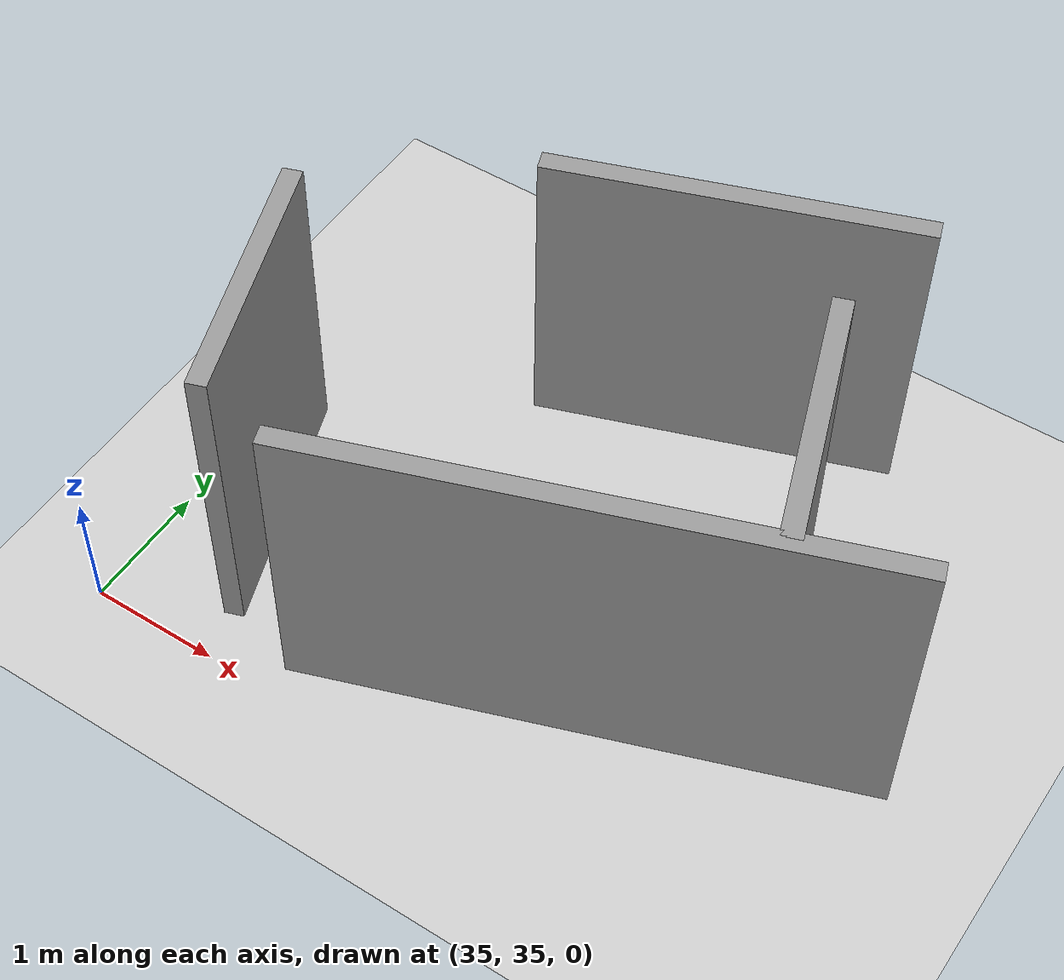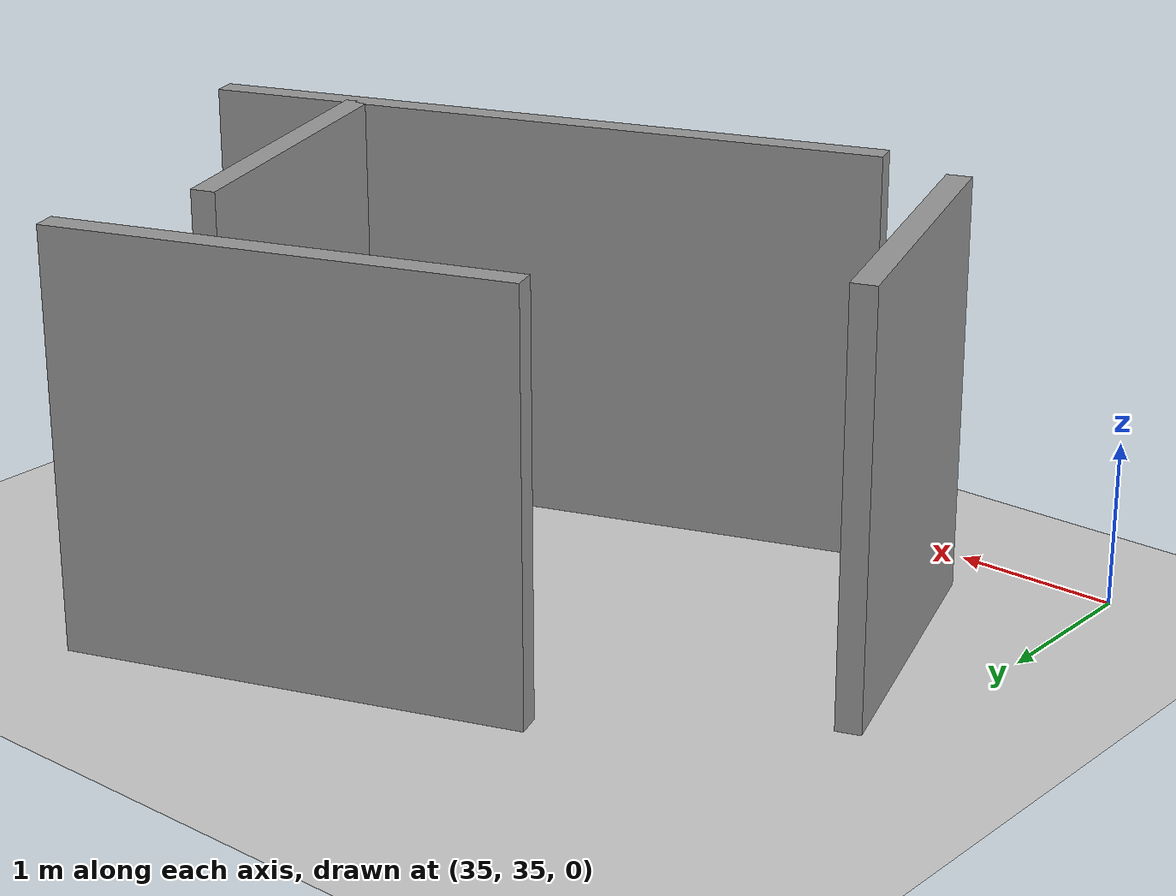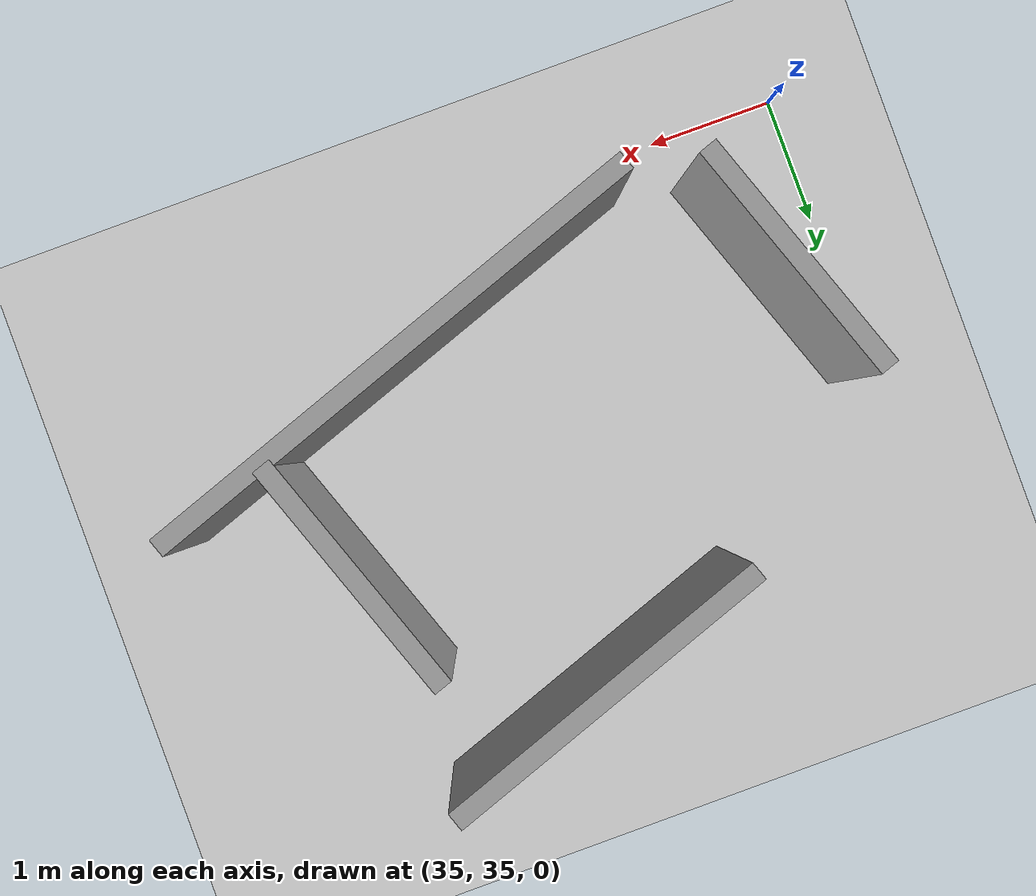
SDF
<sdf version="1.6">
 <world name="default">
  <model name="ground_plane">
   <static>1</static>
   <link name="link">
    <collision name="collision">
     <geometry><plane><normal>0 0 1</normal><size>100 100</size></plane></geometry>
     <surface><friction><ode><mu>100</mu><mu2>50</mu2></ode></friction></surface>
    </collision>
    <visual name="visual">
     <cast_shadows>0</cast_shadows>
     <geometry><plane><normal>0 0 1</normal><size>100 100</size></plane></geometry>
     <material>
      <script><uri>file://media/materials/scripts/gazebo.material</uri><name>Gazebo/Grey</name></script>
     </material>
    </visual>
   </link>
  </model>
  <model name="obs2_7">
   <pose>37.9292 37.1136 0 0 0 -2.01635</pose>
   <link name="Wall_0">
    <collision name="Wall_0_Collision">
     <geometry><box><size>2 0.15 2.5</size></box></geometry>
     <pose>0 0 1.25 0 -0 0</pose>
    </collision>
    <visual name="Wall_0_Visual">
     <pose>0 0 1.25 0 -0 0</pose>
     <geometry><box><size>2 0.15 2.5</size></box></geometry>
     <material>
      <script><uri>file://media/materials/scripts/gazebo.material</uri><name>Gazebo/Grey</name></script>
      <ambient>1 1 1 1</ambient>
     </material>
    </visual>
    <pose>-0.796332 1.10862 0 0 -0 0.785398</pose>
   </link>
   <link name="Wall_2">
    <collision name="Wall_2_Collision">
     <geometry><box><size>4.25 0.15 2.5</size></box></geometry>
     <pose>0 0 1.25 0 -0 0</pose>
    </collision>
    <visual name="Wall_2_Visual">
     <pose>0 0 1.25 0 -0 0</pose>
     <geometry><box><size>4.25 0.15 2.5</size></box></geometry>
     <material>
      <script><uri>file://media/materials/scripts/gazebo.material</uri><name>Gazebo/Grey</name></script>
      <ambient>1 1 1 1</ambient>
     </material>
    </visual>
    <pose>0.773928 0.982661 0 0 0 -0.785398</pose>
   </link>
   <link name="Wall_4">
    <collision name="Wall_4_Collision">
     <geometry><box><size>2.75 0.15 2.5</size></box></geometry>
     <pose>0 0 1.25 0 -0 0</pose>
    </collision>
    <visual name="Wall_4_Visual">
     <pose>0 0 1.25 0 -0 0</pose>
     <geometry><box><size>2.75 0.15 2.5</size></box></geometry>
     <material>
      <script><uri>file://media/materials/scripts/gazebo.material</uri><name>Gazebo/Grey</name></script>
      <ambient>1 1 1 1</ambient>
     </material>
    </visual>
    <pose>-1.45556 -0.740711 0 0 0 -0.785398</pose>
   </link>
   <link name="Wall_6">
    <collision name="Wall_6_Collision">
     <geometry><box><size>2 0.15 2.5</size></box></geometry>
     <pose>0 0 1.25 0 -0 0</pose>
    </collision>
    <visual name="Wall_6_Visual">
     <pose>0 0 1.25 0 -0 0</pose>
     <geometry><box><size>2 0.15 2.5</size></box></geometry>
     <material>
      <script><uri>file://media/materials/scripts/gazebo.material</uri><name>Gazebo/Grey</name></script>
      <ambient>1 1 1 1</ambient>
     </material>
    </visual>
    <pose>1.72073 -1.77816 0 0 -0 0.785398</pose>
   </link>
   <static>1</static>
  </model>
 </world>
</sdf>
